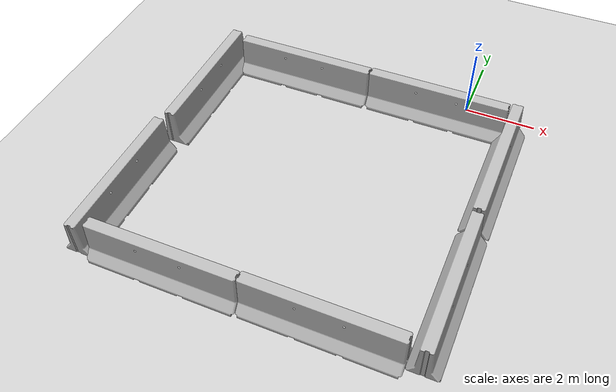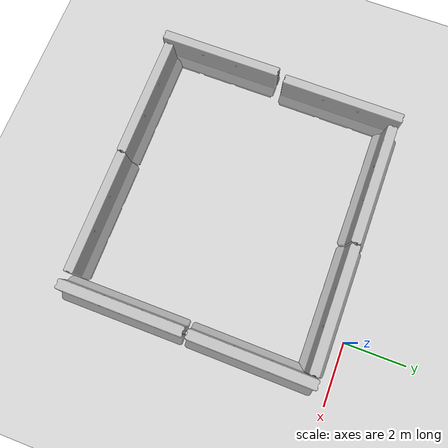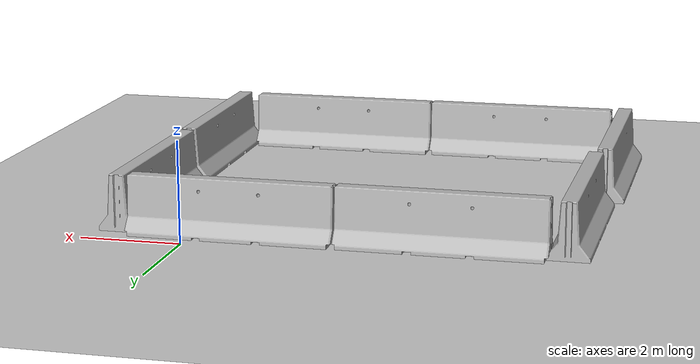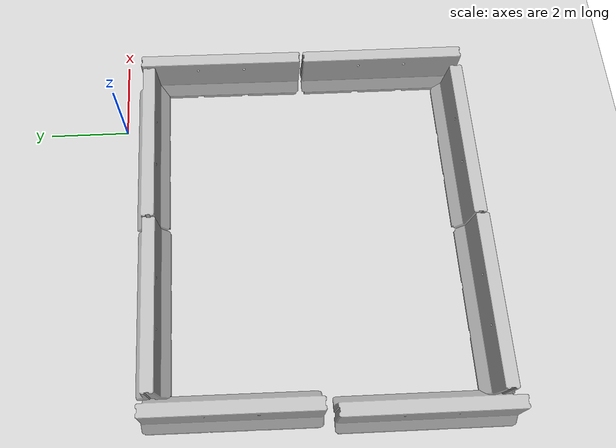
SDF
<sdf version="1.6">
 <world name="default">
  <light name="sun" type="directional">
   <pose>0 0 10 0 -0 0</pose>
   <diffuse>0.8 0.8 0.8 1</diffuse>
   <specular>0.1 0.1 0.1 1</specular>
   <attenuation>
    <range>1000</range>
    <constant>0.9</constant>
    <linear>0.01</linear>
    <quadratic>0.001</quadratic>
   </attenuation>
   <direction>-0.5 0.5 -1</direction>
  </light>
  <model name="ground_plane">
   <static>1</static>
   <link name="link">
    <collision name="collision">
     <geometry><plane><normal>0 0 1</normal><size>100 100</size></plane></geometry>
     <surface><friction><ode><mu>100</mu><mu2>50</mu2></ode></friction></surface>
    </collision>
    <visual name="visual">
     <cast_shadows>0</cast_shadows>
     <geometry><plane><normal>0 0 1</normal><size>100 100</size></plane></geometry>
     <material>
      <script><uri>file://media/materials/scripts/gazebo.material</uri><name>Gazebo/Grey</name></script>
     </material>
    </visual>
   </link>
  </model>
  <gravity>0 0 -9.8</gravity>
  <magnetic_field>6e-06 2.3e-05 -4.2e-05</magnetic_field>
  <atmosphere type="adiabatic"/>
  <physics name="default_physics" default="0" type="ode">
   <max_step_size>0.001</max_step_size>
   <real_time_factor>1</real_time_factor>
   <real_time_update_rate>1000</real_time_update_rate>
  </physics>
  <scene><ambient>0.4 0.4 0.4 1</ambient><background>0.7 0.7 0.7 1</background><shadows>1</shadows></scene>
  <spherical_coordinates>
   <surface_model>EARTH_WGS84</surface_model>
   <latitude_deg>0</latitude_deg>
   <longitude_deg>0</longitude_deg>
   <elevation>0</elevation>
   <heading_deg>0</heading_deg>
  </spherical_coordinates>
  <model name="jersey_barrier">
   <static>1</static>
   <link name="link">
    <visual name="visual">
     <geometry>
      <mesh><uri>model://jersey_barrier/meshes/jersey_barrier.dae</uri><scale>1 1 1</scale></mesh>
     </geometry>
    </visual>
    <collision name="upright">
     <pose>0 0 0.5715 0 -0 0</pose>
     <geometry><box><size>4.06542 0.3063 1.143</size></box></geometry>
    </collision>
    <collision name="base">
     <pose>0 0 0.032258 0 -0 0</pose>
     <geometry><box><size>4.06542 0.8107 0.064516</size></box></geometry>
    </collision>
    <collision name="base2">
     <pose>0 0 0.1 0 -0 0</pose>
     <geometry><box><size>4.06542 0.65 0.1</size></box></geometry>
    </collision>
    <collision name="base3">
     <pose>0 0 0.2 0 -0 0</pose>
     <geometry><box><size>4.06542 0.5 0.1</size></box></geometry>
    </collision>
    <collision name="left-angle">
     <pose>0 -0.224 0.2401 0.9 -0 0</pose>
     <geometry><box><size>4.06542 0.5 0.064516</size></box></geometry>
    </collision>
    <collision name="right-angle">
     <pose>0 0.224 0.2401 -0.9 0 0</pose>
     <geometry><box><size>4.06542 0.5 0.064516</size></box></geometry>
    </collision>
   </link>
   <pose>-1.04821 -8.53198 0 0 -0 0</pose>
  </model>
  <model name="jersey_barrier_0">
   <static>1</static>
   <link name="link">
    <visual name="visual">
     <geometry>
      <mesh><uri>model://jersey_barrier/meshes/jersey_barrier.dae</uri><scale>1 1 1</scale></mesh>
     </geometry>
    </visual>
    <collision name="upright">
     <pose>0 0 0.5715 0 -0 0</pose>
     <geometry><box><size>4.06542 0.3063 1.143</size></box></geometry>
    </collision>
    <collision name="base">
     <pose>0 0 0.032258 0 -0 0</pose>
     <geometry><box><size>4.06542 0.8107 0.064516</size></box></geometry>
    </collision>
    <collision name="base2">
     <pose>0 0 0.1 0 -0 0</pose>
     <geometry><box><size>4.06542 0.65 0.1</size></box></geometry>
    </collision>
    <collision name="base3">
     <pose>0 0 0.2 0 -0 0</pose>
     <geometry><box><size>4.06542 0.5 0.1</size></box></geometry>
    </collision>
    <collision name="left-angle">
     <pose>0 -0.224 0.2401 0.9 -0 0</pose>
     <geometry><box><size>4.06542 0.5 0.064516</size></box></geometry>
    </collision>
    <collision name="right-angle">
     <pose>0 0.224 0.2401 -0.9 0 0</pose>
     <geometry><box><size>4.06542 0.5 0.064516</size></box></geometry>
    </collision>
   </link>
   <pose>-5.12468 -8.56336 0 0 -0 0</pose>
  </model>
  <model name="jersey_barrier_1">
   <static>1</static>
   <link name="link">
    <visual name="visual">
     <geometry>
      <mesh><uri>model://jersey_barrier/meshes/jersey_barrier.dae</uri><scale>1 1 1</scale></mesh>
     </geometry>
    </visual>
    <collision name="upright">
     <pose>0 0 0.5715 0 -0 0</pose>
     <geometry><box><size>4.06542 0.3063 1.143</size></box></geometry>
    </collision>
    <collision name="base">
     <pose>0 0 0.032258 0 -0 0</pose>
     <geometry><box><size>4.06542 0.8107 0.064516</size></box></geometry>
    </collision>
    <collision name="base2">
     <pose>0 0 0.1 0 -0 0</pose>
     <geometry><box><size>4.06542 0.65 0.1</size></box></geometry>
    </collision>
    <collision name="base3">
     <pose>0 0 0.2 0 -0 0</pose>
     <geometry><box><size>4.06542 0.5 0.1</size></box></geometry>
    </collision>
    <collision name="left-angle">
     <pose>0 -0.224 0.2401 0.9 -0 0</pose>
     <geometry><box><size>4.06542 0.5 0.064516</size></box></geometry>
    </collision>
    <collision name="right-angle">
     <pose>0 0.224 0.2401 -0.9 0 0</pose>
     <geometry><box><size>4.06542 0.5 0.064516</size></box></geometry>
    </collision>
   </link>
   <pose>1.39578 -6.6805 0 0 -0 1.56711</pose>
  </model>
  <model name="jersey_barrier_2">
   <static>1</static>
   <link name="link">
    <visual name="visual">
     <geometry>
      <mesh><uri>model://jersey_barrier/meshes/jersey_barrier.dae</uri><scale>1 1 1</scale></mesh>
     </geometry>
    </visual>
    <collision name="upright">
     <pose>0 0 0.5715 0 -0 0</pose>
     <geometry><box><size>4.06542 0.3063 1.143</size></box></geometry>
    </collision>
    <collision name="base">
     <pose>0 0 0.032258 0 -0 0</pose>
     <geometry><box><size>4.06542 0.8107 0.064516</size></box></geometry>
    </collision>
    <collision name="base2">
     <pose>0 0 0.1 0 -0 0</pose>
     <geometry><box><size>4.06542 0.65 0.1</size></box></geometry>
    </collision>
    <collision name="base3">
     <pose>0 0 0.2 0 -0 0</pose>
     <geometry><box><size>4.06542 0.5 0.1</size></box></geometry>
    </collision>
    <collision name="left-angle">
     <pose>0 -0.224 0.2401 0.9 -0 0</pose>
     <geometry><box><size>4.06542 0.5 0.064516</size></box></geometry>
    </collision>
    <collision name="right-angle">
     <pose>0 0.224 0.2401 -0.9 0 0</pose>
     <geometry><box><size>4.06542 0.5 0.064516</size></box></geometry>
    </collision>
   </link>
   <pose>1.42537 -2.53027 0 0 0 -1.58048</pose>
  </model>
  <model name="jersey_barrier_3">
   <static>1</static>
   <link name="link">
    <visual name="visual">
     <geometry>
      <mesh><uri>model://jersey_barrier/meshes/jersey_barrier.dae</uri><scale>1 1 1</scale></mesh>
     </geometry>
    </visual>
    <collision name="upright">
     <pose>0 0 0.5715 0 -0 0</pose>
     <geometry><box><size>4.06542 0.3063 1.143</size></box></geometry>
    </collision>
    <collision name="base">
     <pose>0 0 0.032258 0 -0 0</pose>
     <geometry><box><size>4.06542 0.8107 0.064516</size></box></geometry>
    </collision>
    <collision name="base2">
     <pose>0 0 0.1 0 -0 0</pose>
     <geometry><box><size>4.06542 0.65 0.1</size></box></geometry>
    </collision>
    <collision name="base3">
     <pose>0 0 0.2 0 -0 0</pose>
     <geometry><box><size>4.06542 0.5 0.1</size></box></geometry>
    </collision>
    <collision name="left-angle">
     <pose>0 -0.224 0.2401 0.9 -0 0</pose>
     <geometry><box><size>4.06542 0.5 0.064516</size></box></geometry>
    </collision>
    <collision name="right-angle">
     <pose>0 0.224 0.2401 -0.9 0 0</pose>
     <geometry><box><size>4.06542 0.5 0.064516</size></box></geometry>
    </collision>
   </link>
   <pose>-0.785681 -0.704019 0 0 -0 0</pose>
  </model>
  <model name="jersey_barrier_4">
   <static>1</static>
   <link name="link">
    <visual name="visual">
     <geometry>
      <mesh><uri>model://jersey_barrier/meshes/jersey_barrier.dae</uri><scale>1 1 1</scale></mesh>
     </geometry>
    </visual>
    <collision name="upright">
     <pose>0 0 0.5715 0 -0 0</pose>
     <geometry><box><size>4.06542 0.3063 1.143</size></box></geometry>
    </collision>
    <collision name="base">
     <pose>0 0 0.032258 0 -0 0</pose>
     <geometry><box><size>4.06542 0.8107 0.064516</size></box></geometry>
    </collision>
    <collision name="base2">
     <pose>0 0 0.1 0 -0 0</pose>
     <geometry><box><size>4.06542 0.65 0.1</size></box></geometry>
    </collision>
    <collision name="base3">
     <pose>0 0 0.2 0 -0 0</pose>
     <geometry><box><size>4.06542 0.5 0.1</size></box></geometry>
    </collision>
    <collision name="left-angle">
     <pose>0 -0.224 0.2401 0.9 -0 0</pose>
     <geometry><box><size>4.06542 0.5 0.064516</size></box></geometry>
    </collision>
    <collision name="right-angle">
     <pose>0 0.224 0.2401 -0.9 0 0</pose>
     <geometry><box><size>4.06542 0.5 0.064516</size></box></geometry>
    </collision>
   </link>
   <pose>-7.42873 -6.82847 0 0 0 -1.57262</pose>
  </model>
  <model name="jersey_barrier_5">
   <static>1</static>
   <link name="link">
    <visual name="visual">
     <geometry>
      <mesh><uri>model://jersey_barrier/meshes/jersey_barrier.dae</uri><scale>1 1 1</scale></mesh>
     </geometry>
    </visual>
    <collision name="upright">
     <pose>0 0 0.5715 0 -0 0</pose>
     <geometry><box><size>4.06542 0.3063 1.143</size></box></geometry>
    </collision>
    <collision name="base">
     <pose>0 0 0.032258 0 -0 0</pose>
     <geometry><box><size>4.06542 0.8107 0.064516</size></box></geometry>
    </collision>
    <collision name="base2">
     <pose>0 0 0.1 0 -0 0</pose>
     <geometry><box><size>4.06542 0.65 0.1</size></box></geometry>
    </collision>
    <collision name="base3">
     <pose>0 0 0.2 0 -0 0</pose>
     <geometry><box><size>4.06542 0.5 0.1</size></box></geometry>
    </collision>
    <collision name="left-angle">
     <pose>0 -0.224 0.2401 0.9 -0 0</pose>
     <geometry><box><size>4.06542 0.5 0.064516</size></box></geometry>
    </collision>
    <collision name="right-angle">
     <pose>0 0.224 0.2401 -0.9 0 0</pose>
     <geometry><box><size>4.06542 0.5 0.064516</size></box></geometry>
    </collision>
   </link>
   <pose>-7.26221 -2.52531 0 0 0 -1.57582</pose>
  </model>
  <model name="jersey_barrier_6">
   <static>1</static>
   <link name="link">
    <visual name="visual">
     <geometry>
      <mesh><uri>model://jersey_barrier/meshes/jersey_barrier.dae</uri><scale>1 1 1</scale></mesh>
     </geometry>
    </visual>
    <collision name="upright">
     <pose>0 0 0.5715 0 -0 0</pose>
     <geometry><box><size>4.06542 0.3063 1.143</size></box></geometry>
    </collision>
    <collision name="base">
     <pose>0 0 0.032258 0 -0 0</pose>
     <geometry><box><size>4.06542 0.8107 0.064516</size></box></geometry>
    </collision>
    <collision name="base2">
     <pose>0 0 0.1 0 -0 0</pose>
     <geometry><box><size>4.06542 0.65 0.1</size></box></geometry>
    </collision>
    <collision name="base3">
     <pose>0 0 0.2 0 -0 0</pose>
     <geometry><box><size>4.06542 0.5 0.1</size></box></geometry>
    </collision>
    <collision name="left-angle">
     <pose>0 -0.224 0.2401 0.9 -0 0</pose>
     <geometry><box><size>4.06542 0.5 0.064516</size></box></geometry>
    </collision>
    <collision name="right-angle">
     <pose>0 0.224 0.2401 -0.9 0 0</pose>
     <geometry><box><size>4.06542 0.5 0.064516</size></box></geometry>
    </collision>
   </link>
   <pose>-4.87245 -0.731236 0 0 -0 0</pose>
  </model>
 </world>
</sdf>
